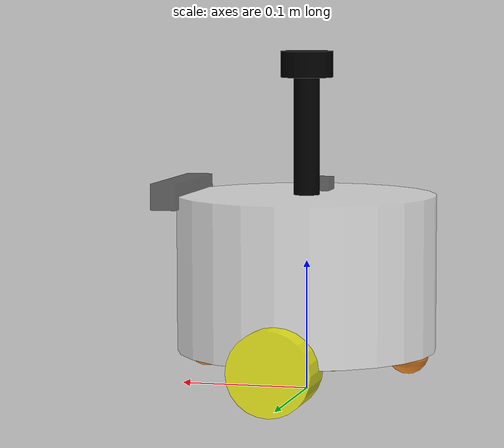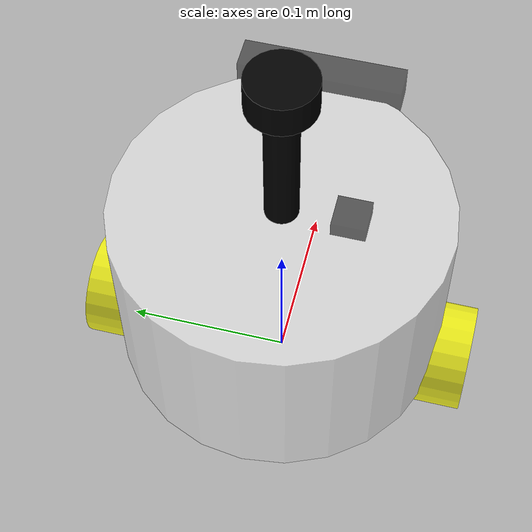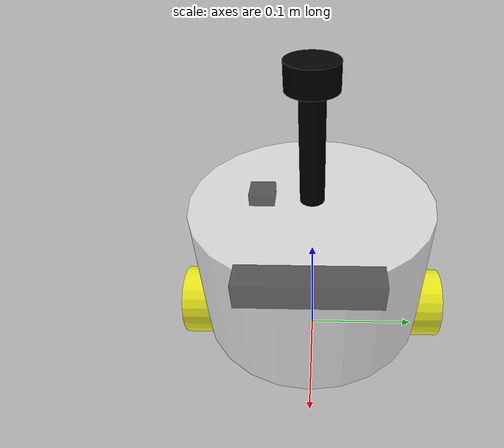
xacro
<?xml version="1.0"?>
<robot xmlns:xacro="http://www.ros.org/wiki/xacro" name="barcoPolo">

    <!-- base -->
    <xacro:include filename="$(find boat_description)/urdf/boat/base.urdf.xacro"/>

    <!-- sensors -->
    <xacro:include filename="$(find boat_description)/urdf/boat/sensor/camera.urdf.xacro"/>
    <xacro:include filename="$(find boat_description)/urdf/boat/sensor/imu.urdf.xacro"/>
    <xacro:include filename="$(find boat_description)/urdf/boat/sensor/lidar.urdf.xacro"/>
    <xacro:include filename="$(find boat_description)/urdf/boat/actuator/wheel.urdf.xacro"/>
    <xacro:include filename="$(find boat_description)/urdf/boat/actuator/caster.urdf.xacro"/>
    <!-- plugin -->
    <xacro:include filename="$(find boat_description)/urdf/boat/plugin/gazebo_sensor_plugin.xacro"/>
    <xacro:include filename="$(find boat_description)/urdf/boat/boat.ros2_control.xacro"/>
    <!-- base macro -->
    <xacro:base_xacro length="0.12" radius="0.10"/>
    <!-- sensor -->
    <xacro:imu_xacro xyz="0.0 -0.04 0.06"/>
    <xacro:camera_xacro xyz="0.10 0.0 0.06"/>
    <xacro:lidar_xacro xyz="0.0 0.0 0.11"/>
    <!-- actuators -->
    <xacro:wheel_xacro wheel_name="left_wheel" xyz="0.0 0.1 -0.06"/>
    <xacro:wheel_xacro wheel_name="right_wheel" xyz="0.0 -0.1 -0.06"/>
    <xacro:caster_xacro caster_name="front_caster" xyz="0.08 0.0 -0.06"/>
    <xacro:caster_xacro caster_name="back_caster" xyz="-0.08 0.0 -0.06"/>

    <xacro:gazebo_sensor_plugin/>
    <xacro:boat_ros2_control/>
</robot>

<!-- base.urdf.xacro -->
<robot xmlns:xacro="http://www.ros.org/wiki/xacro">
    <xacro:include filename="$(find boat_description)/urdf/common_inertia.xacro"/>
    <xacro:macro name="base_xacro" params="length radius">
        <!-- ground -->
        <link name="ground_link"/>

        <!-- robot body -->
        <link name="base_link">
            <!-- visual of parts -->
            <visual>
                <!-- offset and rotation relative to self center -->
                <origin xyz="0.0 0.0 0.0" rpy="0.0 0.0 0.0"/>
                <!-- geometry description -->
                <geometry>
                    <!-- box/cylinder/... -->
                    <cylinder radius="${radius}" length="${length}"/>
                </geometry>
                <!-- Material description -->
                <material name="white">
                    <color rgba="1.0 1.0 1.0 0.5"/>
                </material>
            </visual>
            <collision>
                <!-- offset and rotation relative to self center -->
                <origin xyz="0.0 0.0 0.0" rpy="0.0 0.0 0.0"/>
                <!-- geometry description -->
                <geometry>
                    <!-- box/cylinder/... -->
                    <cylinder radius="${radius}" length="${length}"/>
                </geometry>
                <!-- Material description -->
                <material name="white">
                    <color rgba="1.0 1.0 1.0 0.5"/>
                </material>
            </collision>

            <xacro:cylinder_inertia m="1.0" r="${radius}" h="${length}"/>

        </link>

        <joint name="joint_name" type="fixed">
            <origin xyz="0.0 0.0 ${length/2+0.032-0.001}" rpy="0.0 0.0 0.0"/>
            <parent link="ground_link"/>
            <child link="base_link"/>
        </joint>
    </xacro:macro>
</robot>

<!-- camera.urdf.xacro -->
<robot xmlns:xacro="http://www.ros.org/wiki/xacro">
<xacro:include filename="$(find boat_description)/urdf/common_inertia.xacro"/>
    <xacro:macro name="camera_xacro" params="xyz">
        <link name="camera_link">
            <!-- visual of parts -->
            <visual>
                <!-- offset and rotation relative to self center -->
                <origin xyz="0.0 0.0 0.0" rpy="0.0 0.0 0.0"/>
                <!-- geometry description -->
                <geometry>
                    <!-- a box -->
                    <box size="0.02 0.10 0.02"/>
                </geometry>
                <!-- Material description -->
                <material name="black">
                    <color rgba="0.0 0.0 0.0 0.5"/>
                </material>
            </visual>
            <collision>
                <!-- offset and rotation relative to self center -->
                <origin xyz="0.0 0.0 0.0" rpy="0.0 0.0 0.0"/>
                <!-- geometry description -->
                <geometry>
                    <!-- a box -->
                    <box size="0.02 0.10 0.02"/>
                </geometry>
                <!-- Material description -->
                <material name="black">
                    <color rgba="0.0 0.0 0.0 0.5"/>
                </material>
            </collision>
            <xacro:box_inertia m="0.1" w="0.02" h="0.10" d="0.02"/>
        </link>

        <link name="camera_optical_link"></link>

        <!-- Joint to connect parts -->
        <!-- Type is either fixed or revolute-->
        <joint name="camera_joint" type="fixed">
            <parent link="base_link"/>
            <child link="camera_link"/>
            <origin xyz="${xyz}" rpy="0.0 0.0 0.0"/>
        </joint>

        <joint name="camera_optical_joint" type="fixed">
            <parent link="base_link"/>
            <child link="camera_optical_link"/>
            <origin xyz="0 0 0" rpy="${-pi/2} 0.0 ${-pi/2}"/>
        </joint>

    </xacro:macro>
</robot>

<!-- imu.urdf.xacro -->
<robot xmlns:xacro="http://www.ros.org/wiki/xacro">
<xacro:include filename="$(find boat_description)/urdf/common_inertia.xacro"/>
    <xacro:macro name="imu_xacro" params="xyz">
        <!-- Second part of the robot: IMU -->
        <link name="imu_link">
            <!-- visual of parts -->
            <visual>
                <!-- offset and rotation relative to self center -->
                <origin xyz="0.0 0.0 0.0" rpy="0.0 0.0 0.0"/>
                <!-- geometry description -->
                <geometry>
                    <!-- a box -->
                    <box size="0.02 0.02 0.02"/>
                </geometry>
                <!-- Material description -->
                <material name="black">
                    <color rgba="0.0 0.0 0.0 0.5"/>
                </material>
            </visual>
            <collision>
                <!-- offset and rotation relative to self center -->
                <origin xyz="0.0 0.0 0.0" rpy="0.0 0.0 0.0"/>
                <!-- geometry description -->
                <geometry>
                    <!-- a box -->
                    <box size="0.02 0.02 0.02"/>
                </geometry>
                <!-- Material description -->
                <material name="black">
                    <color rgba="0.0 0.0 0.0 0.5"/>
                </material>
            </collision>
            <xacro:box_inertia m="0.05" w="0.02" h="0.02" d="0.02"/>
        </link>

        <!-- Joint to connect parts -->
        <!-- Type is either fixed or revolute-->
        <joint name="imu_joint" type="fixed">
            <origin xyz="${xyz}" rpy="0.0 0.0 0.0"/>
            <parent link="base_link"/>
            <child link="imu_link"/>
        </joint>
    </xacro:macro>
</robot>

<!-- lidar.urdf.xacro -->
<robot xmlns:xacro="http://www.ros.org/wiki/xacro">
<xacro:include filename="$(find boat_description)/urdf/common_inertia.xacro"/>
    <xacro:macro name="lidar_xacro" params="xyz">
        <link name="lidar_cylinder_link">
            <!-- visual of parts -->
            <visual>
                <!-- offset and rotation relative to self center -->
                <origin xyz="0.0 0.0 0.0" rpy="0.0 0.0 0.0"/>
                <!-- geometry description -->
                <geometry>
                    <cylinder radius="0.01" length="0.10"/>
                </geometry>
                <!-- Material description -->
                <material name="black">
                    <color rgba="0.0 0.0 0.0 1.0"/>
                </material>
            </visual>
            <collision>
                <!-- offset and rotation relative to self center -->
                <origin xyz="0.0 0.0 0.0" rpy="0.0 0.0 0.0"/>
                <!-- geometry description -->
                <geometry>
                    <cylinder radius="0.01" length="0.10"/>
                </geometry>
                <!-- Material description -->
                <material name="black">
                    <color rgba="0.0 0.0 0.0 1.0"/>
                </material>
            </collision>
            <xacro:cylinder_inertia m="0.05" r="0.01" h="0.10"/>
        </link>

        <link name="lidar_link">
        <!-- visual of parts -->
            <visual>
                <!-- offset and rotation relative to self center -->
                <origin xyz="0.0 0.0 0.0" rpy="0.0 0.0 0.0"/>
                <!-- geometry description -->
                <geometry>
                    <cylinder radius="0.02" length="0.02"/>
                </geometry>
                <!-- Material description -->
                <material name="black">
                    <color rgba="0.0 0.0 0.0 1.0"/>
                </material>
            </visual>
            <collision>
                <!-- offset and rotation relative to self center -->
                <origin xyz="0.0 0.0 0.0" rpy="0.0 0.0 0.0"/>
                <!-- geometry description -->
                <geometry>
                    <cylinder radius="0.02" length="0.02"/>
                </geometry>
                <!-- Material description -->
                <material name="black">
                    <color rgba="0.0 0.0 0.0 1.0"/>
                </material>
            </collision>
            <xacro:cylinder_inertia m="0.05" r="0.02" h="0.02"/>
        </link>

        <!-- Joint to connect parts -->
        <!-- Type is either fixed or revolute-->
        <joint name="lidar_joint" type="fixed">
            <origin xyz="0.0 0.0 0.05" rpy="0.0 0.0 0.0"/>
            <parent link="lidar_cylinder_link"/>
            <child link="lidar_link"/>
        </joint>

        <joint name="lidar_cylinder_joint" type="fixed">
            <origin xyz="${xyz}" rpy="0.0 0.0 0.0"/>
            <parent link="base_link"/>
            <child link="lidar_cylinder_link"/>
        </joint>

        <gazebo reference="lidar_cylinder_link">
            <material>Gazebo/Black</material>
        </gazebo>
        <gazebo reference="lidar_link">
            <material>Gazebo/Black</material>
        </gazebo>
    </xacro:macro>
</robot>

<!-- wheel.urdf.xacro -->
<robot xmlns:xacro="http://www.ros.org/wiki/xacro">
<xacro:include filename="$(find boat_description)/urdf/common_inertia.xacro"/>
    <xacro:macro name="wheel_xacro" params="wheel_name xyz">
        <!-- Second part of the robot: IMU -->
        <link name="${wheel_name}_link">
            <!-- visual of parts -->
            <visual>
                <!-- offset and rotation relative to self center -->
                <origin xyz="0.0 0.0 0.0" rpy="1.57079 0.0 0.0"/>
                <!-- geometry description -->
                <geometry>
                    <cylinder radius="0.032" length="0.04"/>
                </geometry>
                <!-- Material description -->
                <material name="yellow">
                    <color rgba="1.0 1.0 0.0 0.8"/>
                </material>
            </visual>
            <collision>
                <!-- offset and rotation relative to self center -->
                <origin xyz="0.0 0.0 0.0" rpy="1.57079 0.0 0.0"/>
                <!-- geometry description -->
                <geometry>
                    <cylinder radius="0.032" length="0.04"/>
                </geometry>
                <!-- Material description -->
                <material name="white">
                    <color rgba="1.0 1.0 1.0 0.8"/>
                </material>
            </collision>
            <xacro:cylinder_inertia m="0.05" r="0.032" h="0.04"/>
        </link>

        <!-- Joint to connect parts -->
        <!-- Type is either fixed or revolute-->
        <joint name="${wheel_name}_joint" type="continuous">
            <origin xyz="${xyz}" rpy="0.0 0.0 0.0"/>
            <parent link="base_link"/>
            <child link="${wheel_name}_link"/>
            <axis xyz="0.0 1.0 0.0"/>
        </joint>

        <gazebo reference="${wheel_name}_link">
            <mu1 value="20.0"/>
            <mu2 value="20.0"/>
            <kp value="1000000000.0"/>
            <kd value="1.0"/>
        </gazebo>
    </xacro:macro>
</robot>

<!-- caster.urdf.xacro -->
<robot xmlns:xacro="http://www.ros.org/wiki/xacro">
<xacro:include filename="$(find boat_description)/urdf/common_inertia.xacro"/>
    <xacro:macro name="caster_xacro" params="caster_name xyz">
        <!-- Second part of the robot: IMU -->
        <link name="${caster_name}_link">
            <!-- visual of parts -->
            <visual>
                <!-- offset and rotation relative to self center -->
                <origin xyz="0.0 0.0 0.0" rpy="0.0 0.0 0.0"/>
                <!-- geometry description -->
                <geometry>
                    <sphere radius="0.016"/>
                </geometry>
                <!-- Material description -->
                <material name="yellow">
                    <color rgba="1.0 0.5 0.0 0.8"/>
                </material>
            </visual>
            <collision>
                <!-- offset and rotation relative to self center -->
                <origin xyz="0.0 0.0 0.0" rpy="0.0 0.0 0.0"/>
                <!-- geometry description -->
                <geometry>
                    <sphere radius="0.016"/>
                </geometry>
                <!-- Material description -->
                <material name="yellow">
                    <color rgba="1.0 0.5 0.0 0.8"/>
                </material>
            </collision>
            <xacro:sphere_inertia m="0.05" r="0.016"/>
        </link>

        <!-- Joint to connect parts -->
        <!-- Type is either fixed or revolute-->
        <joint name="${caster_name}_joint" type="fixed">
            <origin xyz="${xyz}" rpy="0.0 0.0 0.0"/>
            <parent link="base_link"/>
            <child link="${caster_name}_link"/>
            <axis xyz="0.0 1.0 0.0"/>
        </joint>

        <gazebo reference="${caster_name}_link">
            <mu1 value="0.0"/>
            <mu2 value="0.0"/>
            <kp value="1000000000.0"/>
            <kd value="1.0"/>
        </gazebo>
    </xacro:macro>
</robot>
